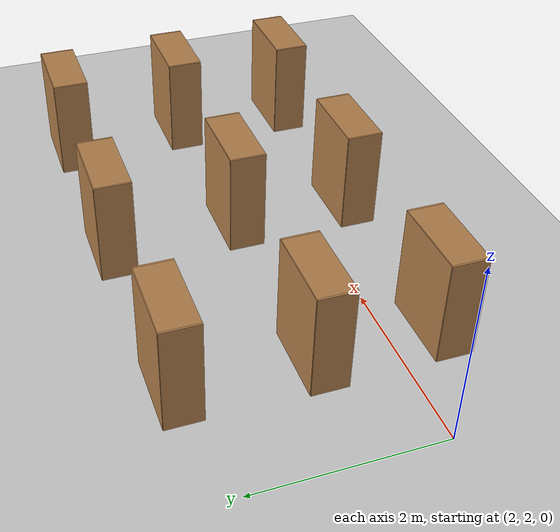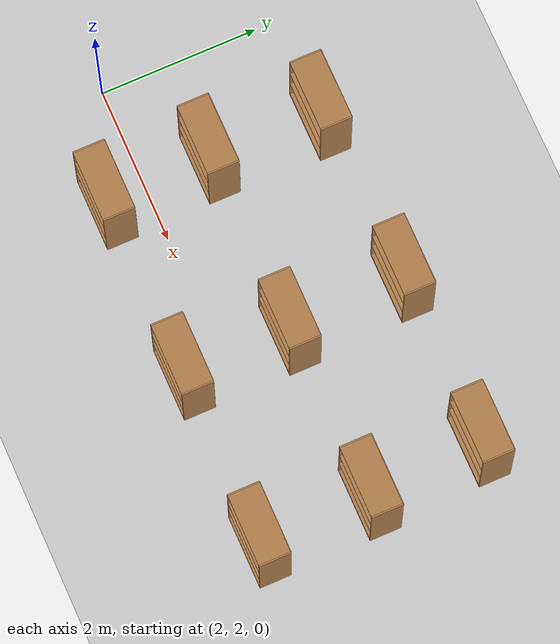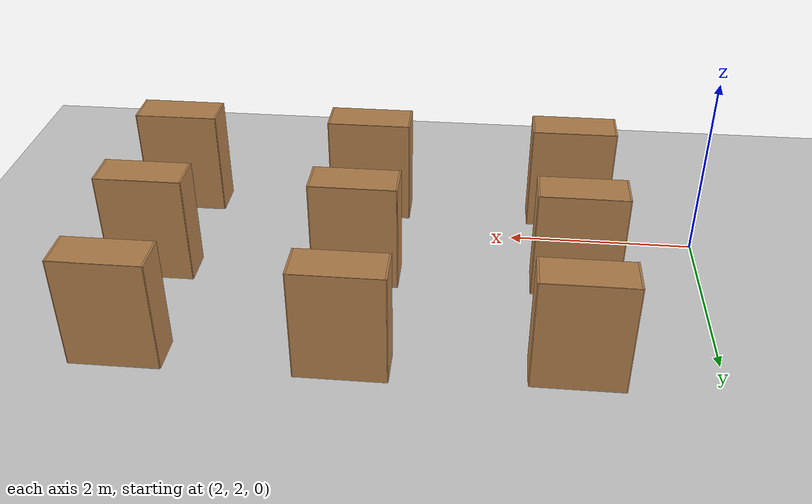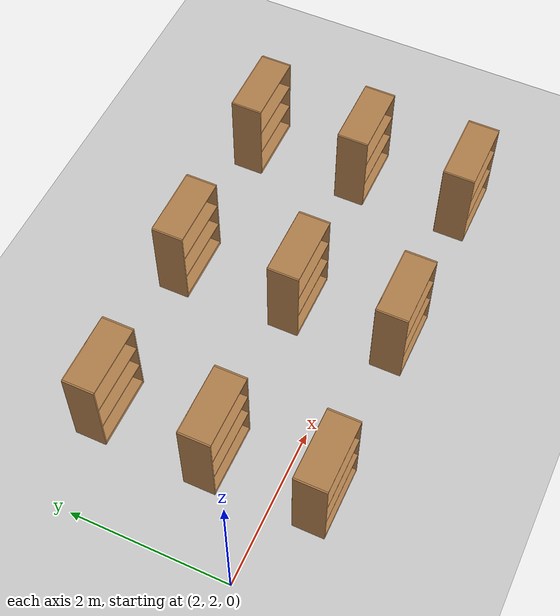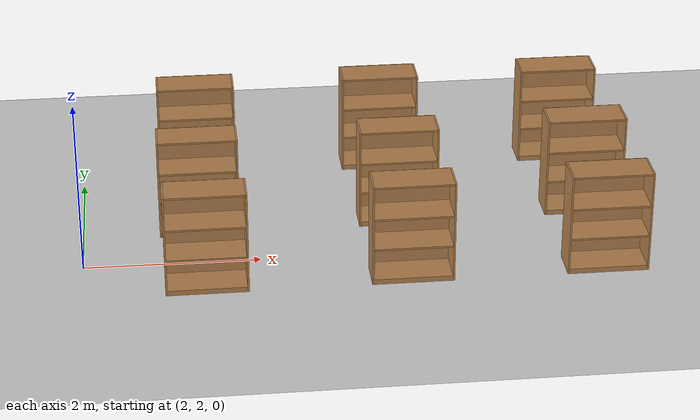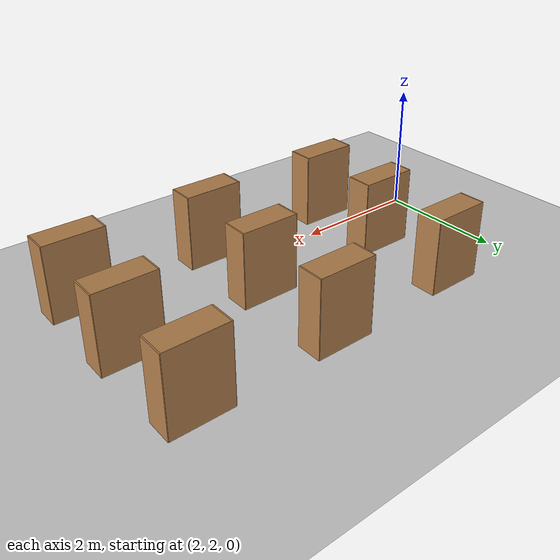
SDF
<sdf version="1.6">
 <world name="default">
  <model name="ground_plane">
   <static>1</static>
   <link name="link">
    <collision name="collision">
     <geometry><plane><normal>0 0 1</normal><size>100 100</size></plane></geometry>
     <surface><friction><ode><mu>100</mu><mu2>50</mu2></ode></friction></surface>
    </collision>
    <visual name="visual">
     <cast_shadows>0</cast_shadows>
     <geometry><plane><normal>0 0 1</normal><size>100 100</size></plane></geometry>
     <material>
      <script><uri>file://media/materials/scripts/gazebo.material</uri><name>Gazebo/Grey</name></script>
     </material>
    </visual>
   </link>
  </model>
  <model name="bookshelf_4">
   <static>1</static>
   <link name="link">
    <inertial><mass>1</mass></inertial>
    <collision name="back">
     <pose>0 0.005 0.6 0 -0 0</pose>
     <geometry><box><size>0.9 0.01 1.2</size></box></geometry>
    </collision>
    <visual name="visual1">
     <pose>0 0.005 0.6 0 -0 0</pose>
     <geometry><box><size>0.9 0.01 1.2</size></box></geometry>
     <material>
      <script><uri>file://media/materials/scripts/gazebo.material</uri><name>Gazebo/Wood</name></script>
     </material>
    </visual>
    <collision name="left_side">
     <pose>0.45 -0.195 0.6 0 -0 0</pose>
     <geometry><box><size>0.02 0.4 1.2</size></box></geometry>
    </collision>
    <visual name="visual2">
     <pose>0.45 -0.195 0.6 0 -0 0</pose>
     <geometry><box><size>0.02 0.4 1.2</size></box></geometry>
     <material>
      <script><uri>file://media/materials/scripts/gazebo.material</uri><name>Gazebo/Wood</name></script>
     </material>
    </visual>
    <collision name="right_side">
     <pose>-0.45 -0.195 0.6 0 -0 0</pose>
     <geometry><box><size>0.02 0.4 1.2</size></box></geometry>
    </collision>
    <visual name="visual3">
     <pose>-0.45 -0.195 0.6 0 -0 0</pose>
     <geometry><box><size>0.02 0.4 1.2</size></box></geometry>
     <material>
      <script><uri>file://media/materials/scripts/gazebo.material</uri><name>Gazebo/Wood</name></script>
     </material>
    </visual>
    <collision name="bottom">
     <pose>0 -0.195 0.03 0 -0 0</pose>
     <geometry><box><size>0.88 0.4 0.06</size></box></geometry>
    </collision>
    <visual name="visual4">
     <pose>0 -0.195 0.03 0 -0 0</pose>
     <geometry><box><size>0.88 0.4 0.06</size></box></geometry>
     <material>
      <script><uri>file://media/materials/scripts/gazebo.material</uri><name>Gazebo/Wood</name></script>
     </material>
    </visual>
    <collision name="top">
     <pose>0 -0.195 1.19 0 -0 0</pose>
     <geometry><box><size>0.88 0.4 0.02</size></box></geometry>
    </collision>
    <visual name="visual5">
     <pose>0 -0.195 1.19 0 -0 0</pose>
     <geometry><box><size>0.88 0.4 0.02</size></box></geometry>
     <material>
      <script><uri>file://media/materials/scripts/gazebo.material</uri><name>Gazebo/Wood</name></script>
     </material>
    </visual>
    <collision name="low_shelf">
     <pose>0 -0.195 0.43 0 -0 0</pose>
     <geometry><box><size>0.88 0.4 0.02</size></box></geometry>
    </collision>
    <visual name="visual6">
     <pose>0 -0.195 0.43 0 -0 0</pose>
     <geometry><box><size>0.88 0.4 0.02</size></box></geometry>
     <material>
      <script><uri>file://media/materials/scripts/gazebo.material</uri><name>Gazebo/Wood</name></script>
     </material>
    </visual>
    <collision name="high_shelf">
     <pose>0 -0.195 0.8 0 -0 0</pose>
     <geometry><box><size>0.88 0.4 0.02</size></box></geometry>
    </collision>
    <visual name="visual7">
     <pose>0 -0.195 0.8 0 -0 0</pose>
     <geometry><box><size>0.88 0.4 0.02</size></box></geometry>
     <material>
      <script><uri>file://media/materials/scripts/gazebo.material</uri><name>Gazebo/Wood</name></script>
     </material>
    </visual>
   </link>
   <pose>3.36998 4.44569 0 0 -0 0</pose>
  </model>
  <model name="bookshelf_8">
   <static>1</static>
   <link name="link">
    <inertial><mass>1</mass></inertial>
    <collision name="back">
     <pose>0 0.005 0.6 0 -0 0</pose>
     <geometry><box><size>0.9 0.01 1.2</size></box></geometry>
    </collision>
    <visual name="visual1">
     <pose>0 0.005 0.6 0 -0 0</pose>
     <geometry><box><size>0.9 0.01 1.2</size></box></geometry>
     <material>
      <script><uri>file://media/materials/scripts/gazebo.material</uri><name>Gazebo/Wood</name></script>
     </material>
    </visual>
    <collision name="left_side">
     <pose>0.45 -0.195 0.6 0 -0 0</pose>
     <geometry><box><size>0.02 0.4 1.2</size></box></geometry>
    </collision>
    <visual name="visual2">
     <pose>0.45 -0.195 0.6 0 -0 0</pose>
     <geometry><box><size>0.02 0.4 1.2</size></box></geometry>
     <material>
      <script><uri>file://media/materials/scripts/gazebo.material</uri><name>Gazebo/Wood</name></script>
     </material>
    </visual>
    <collision name="right_side">
     <pose>-0.45 -0.195 0.6 0 -0 0</pose>
     <geometry><box><size>0.02 0.4 1.2</size></box></geometry>
    </collision>
    <visual name="visual3">
     <pose>-0.45 -0.195 0.6 0 -0 0</pose>
     <geometry><box><size>0.02 0.4 1.2</size></box></geometry>
     <material>
      <script><uri>file://media/materials/scripts/gazebo.material</uri><name>Gazebo/Wood</name></script>
     </material>
    </visual>
    <collision name="bottom">
     <pose>0 -0.195 0.03 0 -0 0</pose>
     <geometry><box><size>0.88 0.4 0.06</size></box></geometry>
    </collision>
    <visual name="visual4">
     <pose>0 -0.195 0.03 0 -0 0</pose>
     <geometry><box><size>0.88 0.4 0.06</size></box></geometry>
     <material>
      <script><uri>file://media/materials/scripts/gazebo.material</uri><name>Gazebo/Wood</name></script>
     </material>
    </visual>
    <collision name="top">
     <pose>0 -0.195 1.19 0 -0 0</pose>
     <geometry><box><size>0.88 0.4 0.02</size></box></geometry>
    </collision>
    <visual name="visual5">
     <pose>0 -0.195 1.19 0 -0 0</pose>
     <geometry><box><size>0.88 0.4 0.02</size></box></geometry>
     <material>
      <script><uri>file://media/materials/scripts/gazebo.material</uri><name>Gazebo/Wood</name></script>
     </material>
    </visual>
    <collision name="low_shelf">
     <pose>0 -0.195 0.43 0 -0 0</pose>
     <geometry><box><size>0.88 0.4 0.02</size></box></geometry>
    </collision>
    <visual name="visual6">
     <pose>0 -0.195 0.43 0 -0 0</pose>
     <geometry><box><size>0.88 0.4 0.02</size></box></geometry>
     <material>
      <script><uri>file://media/materials/scripts/gazebo.material</uri><name>Gazebo/Wood</name></script>
     </material>
    </visual>
    <collision name="high_shelf">
     <pose>0 -0.195 0.8 0 -0 0</pose>
     <geometry><box><size>0.88 0.4 0.02</size></box></geometry>
    </collision>
    <visual name="visual7">
     <pose>0 -0.195 0.8 0 -0 0</pose>
     <geometry><box><size>0.88 0.4 0.02</size></box></geometry>
     <material>
      <script><uri>file://media/materials/scripts/gazebo.material</uri><name>Gazebo/Wood</name></script>
     </material>
    </visual>
   </link>
   <pose>5.5895 4.5203 0 0 -0 0</pose>
  </model>
  <model name="bookshelf_9">
   <static>1</static>
   <link name="link">
    <inertial><mass>1</mass></inertial>
    <collision name="back">
     <pose>0 0.005 0.6 0 -0 0</pose>
     <geometry><box><size>0.9 0.01 1.2</size></box></geometry>
    </collision>
    <visual name="visual1">
     <pose>0 0.005 0.6 0 -0 0</pose>
     <geometry><box><size>0.9 0.01 1.2</size></box></geometry>
     <material>
      <script><uri>file://media/materials/scripts/gazebo.material</uri><name>Gazebo/Wood</name></script>
     </material>
    </visual>
    <collision name="left_side">
     <pose>0.45 -0.195 0.6 0 -0 0</pose>
     <geometry><box><size>0.02 0.4 1.2</size></box></geometry>
    </collision>
    <visual name="visual2">
     <pose>0.45 -0.195 0.6 0 -0 0</pose>
     <geometry><box><size>0.02 0.4 1.2</size></box></geometry>
     <material>
      <script><uri>file://media/materials/scripts/gazebo.material</uri><name>Gazebo/Wood</name></script>
     </material>
    </visual>
    <collision name="right_side">
     <pose>-0.45 -0.195 0.6 0 -0 0</pose>
     <geometry><box><size>0.02 0.4 1.2</size></box></geometry>
    </collision>
    <visual name="visual3">
     <pose>-0.45 -0.195 0.6 0 -0 0</pose>
     <geometry><box><size>0.02 0.4 1.2</size></box></geometry>
     <material>
      <script><uri>file://media/materials/scripts/gazebo.material</uri><name>Gazebo/Wood</name></script>
     </material>
    </visual>
    <collision name="bottom">
     <pose>0 -0.195 0.03 0 -0 0</pose>
     <geometry><box><size>0.88 0.4 0.06</size></box></geometry>
    </collision>
    <visual name="visual4">
     <pose>0 -0.195 0.03 0 -0 0</pose>
     <geometry><box><size>0.88 0.4 0.06</size></box></geometry>
     <material>
      <script><uri>file://media/materials/scripts/gazebo.material</uri><name>Gazebo/Wood</name></script>
     </material>
    </visual>
    <collision name="top">
     <pose>0 -0.195 1.19 0 -0 0</pose>
     <geometry><box><size>0.88 0.4 0.02</size></box></geometry>
    </collision>
    <visual name="visual5">
     <pose>0 -0.195 1.19 0 -0 0</pose>
     <geometry><box><size>0.88 0.4 0.02</size></box></geometry>
     <material>
      <script><uri>file://media/materials/scripts/gazebo.material</uri><name>Gazebo/Wood</name></script>
     </material>
    </visual>
    <collision name="low_shelf">
     <pose>0 -0.195 0.43 0 -0 0</pose>
     <geometry><box><size>0.88 0.4 0.02</size></box></geometry>
    </collision>
    <visual name="visual6">
     <pose>0 -0.195 0.43 0 -0 0</pose>
     <geometry><box><size>0.88 0.4 0.02</size></box></geometry>
     <material>
      <script><uri>file://media/materials/scripts/gazebo.material</uri><name>Gazebo/Wood</name></script>
     </material>
    </visual>
    <collision name="high_shelf">
     <pose>0 -0.195 0.8 0 -0 0</pose>
     <geometry><box><size>0.88 0.4 0.02</size></box></geometry>
    </collision>
    <visual name="visual7">
     <pose>0 -0.195 0.8 0 -0 0</pose>
     <geometry><box><size>0.88 0.4 0.02</size></box></geometry>
     <material>
      <script><uri>file://media/materials/scripts/gazebo.material</uri><name>Gazebo/Wood</name></script>
     </material>
    </visual>
   </link>
   <pose>7.76656 4.53243 0 0 -0 0</pose>
  </model>
  <model name="bookshelf">
   <static>1</static>
   <link name="link">
    <inertial><mass>1</mass></inertial>
    <collision name="back">
     <pose>0 0.005 0.6 0 -0 0</pose>
     <geometry><box><size>0.9 0.01 1.2</size></box></geometry>
    </collision>
    <visual name="visual1">
     <pose>0 0.005 0.6 0 -0 0</pose>
     <geometry><box><size>0.9 0.01 1.2</size></box></geometry>
     <material>
      <script><uri>file://media/materials/scripts/gazebo.material</uri><name>Gazebo/Wood</name></script>
     </material>
    </visual>
    <collision name="left_side">
     <pose>0.45 -0.195 0.6 0 -0 0</pose>
     <geometry><box><size>0.02 0.4 1.2</size></box></geometry>
    </collision>
    <visual name="visual2">
     <pose>0.45 -0.195 0.6 0 -0 0</pose>
     <geometry><box><size>0.02 0.4 1.2</size></box></geometry>
     <material>
      <script><uri>file://media/materials/scripts/gazebo.material</uri><name>Gazebo/Wood</name></script>
     </material>
    </visual>
    <collision name="right_side">
     <pose>-0.45 -0.195 0.6 0 -0 0</pose>
     <geometry><box><size>0.02 0.4 1.2</size></box></geometry>
    </collision>
    <visual name="visual3">
     <pose>-0.45 -0.195 0.6 0 -0 0</pose>
     <geometry><box><size>0.02 0.4 1.2</size></box></geometry>
     <material>
      <script><uri>file://media/materials/scripts/gazebo.material</uri><name>Gazebo/Wood</name></script>
     </material>
    </visual>
    <collision name="bottom">
     <pose>0 -0.195 0.03 0 -0 0</pose>
     <geometry><box><size>0.88 0.4 0.06</size></box></geometry>
    </collision>
    <visual name="visual4">
     <pose>0 -0.195 0.03 0 -0 0</pose>
     <geometry><box><size>0.88 0.4 0.06</size></box></geometry>
     <material>
      <script><uri>file://media/materials/scripts/gazebo.material</uri><name>Gazebo/Wood</name></script>
     </material>
    </visual>
    <collision name="top">
     <pose>0 -0.195 1.19 0 -0 0</pose>
     <geometry><box><size>0.88 0.4 0.02</size></box></geometry>
    </collision>
    <visual name="visual5">
     <pose>0 -0.195 1.19 0 -0 0</pose>
     <geometry><box><size>0.88 0.4 0.02</size></box></geometry>
     <material>
      <script><uri>file://media/materials/scripts/gazebo.material</uri><name>Gazebo/Wood</name></script>
     </material>
    </visual>
    <collision name="low_shelf">
     <pose>0 -0.195 0.43 0 -0 0</pose>
     <geometry><box><size>0.88 0.4 0.02</size></box></geometry>
    </collision>
    <visual name="visual6">
     <pose>0 -0.195 0.43 0 -0 0</pose>
     <geometry><box><size>0.88 0.4 0.02</size></box></geometry>
     <material>
      <script><uri>file://media/materials/scripts/gazebo.material</uri><name>Gazebo/Wood</name></script>
     </material>
    </visual>
    <collision name="high_shelf">
     <pose>0 -0.195 0.8 0 -0 0</pose>
     <geometry><box><size>0.88 0.4 0.02</size></box></geometry>
    </collision>
    <visual name="visual7">
     <pose>0 -0.195 0.8 0 -0 0</pose>
     <geometry><box><size>0.88 0.4 0.02</size></box></geometry>
     <material>
      <script><uri>file://media/materials/scripts/gazebo.material</uri><name>Gazebo/Wood</name></script>
     </material>
    </visual>
   </link>
   <pose>3.36541 1.68749 0 0 -0 0</pose>
  </model>
  <model name="bookshelf_0">
   <static>1</static>
   <link name="link">
    <inertial><mass>1</mass></inertial>
    <collision name="back">
     <pose>0 0.005 0.6 0 -0 0</pose>
     <geometry><box><size>0.9 0.01 1.2</size></box></geometry>
    </collision>
    <visual name="visual1">
     <pose>0 0.005 0.6 0 -0 0</pose>
     <geometry><box><size>0.9 0.01 1.2</size></box></geometry>
     <material>
      <script><uri>file://media/materials/scripts/gazebo.material</uri><name>Gazebo/Wood</name></script>
     </material>
    </visual>
    <collision name="left_side">
     <pose>0.45 -0.195 0.6 0 -0 0</pose>
     <geometry><box><size>0.02 0.4 1.2</size></box></geometry>
    </collision>
    <visual name="visual2">
     <pose>0.45 -0.195 0.6 0 -0 0</pose>
     <geometry><box><size>0.02 0.4 1.2</size></box></geometry>
     <material>
      <script><uri>file://media/materials/scripts/gazebo.material</uri><name>Gazebo/Wood</name></script>
     </material>
    </visual>
    <collision name="right_side">
     <pose>-0.45 -0.195 0.6 0 -0 0</pose>
     <geometry><box><size>0.02 0.4 1.2</size></box></geometry>
    </collision>
    <visual name="visual3">
     <pose>-0.45 -0.195 0.6 0 -0 0</pose>
     <geometry><box><size>0.02 0.4 1.2</size></box></geometry>
     <material>
      <script><uri>file://media/materials/scripts/gazebo.material</uri><name>Gazebo/Wood</name></script>
     </material>
    </visual>
    <collision name="bottom">
     <pose>0 -0.195 0.03 0 -0 0</pose>
     <geometry><box><size>0.88 0.4 0.06</size></box></geometry>
    </collision>
    <visual name="visual4">
     <pose>0 -0.195 0.03 0 -0 0</pose>
     <geometry><box><size>0.88 0.4 0.06</size></box></geometry>
     <material>
      <script><uri>file://media/materials/scripts/gazebo.material</uri><name>Gazebo/Wood</name></script>
     </material>
    </visual>
    <collision name="top">
     <pose>0 -0.195 1.19 0 -0 0</pose>
     <geometry><box><size>0.88 0.4 0.02</size></box></geometry>
    </collision>
    <visual name="visual5">
     <pose>0 -0.195 1.19 0 -0 0</pose>
     <geometry><box><size>0.88 0.4 0.02</size></box></geometry>
     <material>
      <script><uri>file://media/materials/scripts/gazebo.material</uri><name>Gazebo/Wood</name></script>
     </material>
    </visual>
    <collision name="low_shelf">
     <pose>0 -0.195 0.43 0 -0 0</pose>
     <geometry><box><size>0.88 0.4 0.02</size></box></geometry>
    </collision>
    <visual name="visual6">
     <pose>0 -0.195 0.43 0 -0 0</pose>
     <geometry><box><size>0.88 0.4 0.02</size></box></geometry>
     <material>
      <script><uri>file://media/materials/scripts/gazebo.material</uri><name>Gazebo/Wood</name></script>
     </material>
    </visual>
    <collision name="high_shelf">
     <pose>0 -0.195 0.8 0 -0 0</pose>
     <geometry><box><size>0.88 0.4 0.02</size></box></geometry>
    </collision>
    <visual name="visual7">
     <pose>0 -0.195 0.8 0 -0 0</pose>
     <geometry><box><size>0.88 0.4 0.02</size></box></geometry>
     <material>
      <script><uri>file://media/materials/scripts/gazebo.material</uri><name>Gazebo/Wood</name></script>
     </material>
    </visual>
   </link>
   <pose>5.64464 1.69748 0 0 -0 0</pose>
  </model>
  <model name="bookshelf_10">
   <static>1</static>
   <link name="link">
    <inertial><mass>1</mass></inertial>
    <collision name="back">
     <pose>0 0.005 0.6 0 -0 0</pose>
     <geometry><box><size>0.9 0.01 1.2</size></box></geometry>
    </collision>
    <visual name="visual1">
     <pose>0 0.005 0.6 0 -0 0</pose>
     <geometry><box><size>0.9 0.01 1.2</size></box></geometry>
     <material>
      <script><uri>file://media/materials/scripts/gazebo.material</uri><name>Gazebo/Wood</name></script>
     </material>
    </visual>
    <collision name="left_side">
     <pose>0.45 -0.195 0.6 0 -0 0</pose>
     <geometry><box><size>0.02 0.4 1.2</size></box></geometry>
    </collision>
    <visual name="visual2">
     <pose>0.45 -0.195 0.6 0 -0 0</pose>
     <geometry><box><size>0.02 0.4 1.2</size></box></geometry>
     <material>
      <script><uri>file://media/materials/scripts/gazebo.material</uri><name>Gazebo/Wood</name></script>
     </material>
    </visual>
    <collision name="right_side">
     <pose>-0.45 -0.195 0.6 0 -0 0</pose>
     <geometry><box><size>0.02 0.4 1.2</size></box></geometry>
    </collision>
    <visual name="visual3">
     <pose>-0.45 -0.195 0.6 0 -0 0</pose>
     <geometry><box><size>0.02 0.4 1.2</size></box></geometry>
     <material>
      <script><uri>file://media/materials/scripts/gazebo.material</uri><name>Gazebo/Wood</name></script>
     </material>
    </visual>
    <collision name="bottom">
     <pose>0 -0.195 0.03 0 -0 0</pose>
     <geometry><box><size>0.88 0.4 0.06</size></box></geometry>
    </collision>
    <visual name="visual4">
     <pose>0 -0.195 0.03 0 -0 0</pose>
     <geometry><box><size>0.88 0.4 0.06</size></box></geometry>
     <material>
      <script><uri>file://media/materials/scripts/gazebo.material</uri><name>Gazebo/Wood</name></script>
     </material>
    </visual>
    <collision name="top">
     <pose>0 -0.195 1.19 0 -0 0</pose>
     <geometry><box><size>0.88 0.4 0.02</size></box></geometry>
    </collision>
    <visual name="visual5">
     <pose>0 -0.195 1.19 0 -0 0</pose>
     <geometry><box><size>0.88 0.4 0.02</size></box></geometry>
     <material>
      <script><uri>file://media/materials/scripts/gazebo.material</uri><name>Gazebo/Wood</name></script>
     </material>
    </visual>
    <collision name="low_shelf">
     <pose>0 -0.195 0.43 0 -0 0</pose>
     <geometry><box><size>0.88 0.4 0.02</size></box></geometry>
    </collision>
    <visual name="visual6">
     <pose>0 -0.195 0.43 0 -0 0</pose>
     <geometry><box><size>0.88 0.4 0.02</size></box></geometry>
     <material>
      <script><uri>file://media/materials/scripts/gazebo.material</uri><name>Gazebo/Wood</name></script>
     </material>
    </visual>
    <collision name="high_shelf">
     <pose>0 -0.195 0.8 0 -0 0</pose>
     <geometry><box><size>0.88 0.4 0.02</size></box></geometry>
    </collision>
    <visual name="visual7">
     <pose>0 -0.195 0.8 0 -0 0</pose>
     <geometry><box><size>0.88 0.4 0.02</size></box></geometry>
     <material>
      <script><uri>file://media/materials/scripts/gazebo.material</uri><name>Gazebo/Wood</name></script>
     </material>
    </visual>
   </link>
   <pose>7.83971 1.70645 0 0 -0 0</pose>
  </model>
  <model name="bookshelf_11">
   <static>1</static>
   <link name="link">
    <inertial><mass>1</mass></inertial>
    <collision name="back">
     <pose>0 0.005 0.6 0 -0 0</pose>
     <geometry><box><size>0.9 0.01 1.2</size></box></geometry>
    </collision>
    <visual name="visual1">
     <pose>0 0.005 0.6 0 -0 0</pose>
     <geometry><box><size>0.9 0.01 1.2</size></box></geometry>
     <material>
      <script><uri>file://media/materials/scripts/gazebo.material</uri><name>Gazebo/Wood</name></script>
     </material>
    </visual>
    <collision name="left_side">
     <pose>0.45 -0.195 0.6 0 -0 0</pose>
     <geometry><box><size>0.02 0.4 1.2</size></box></geometry>
    </collision>
    <visual name="visual2">
     <pose>0.45 -0.195 0.6 0 -0 0</pose>
     <geometry><box><size>0.02 0.4 1.2</size></box></geometry>
     <material>
      <script><uri>file://media/materials/scripts/gazebo.material</uri><name>Gazebo/Wood</name></script>
     </material>
    </visual>
    <collision name="right_side">
     <pose>-0.45 -0.195 0.6 0 -0 0</pose>
     <geometry><box><size>0.02 0.4 1.2</size></box></geometry>
    </collision>
    <visual name="visual3">
     <pose>-0.45 -0.195 0.6 0 -0 0</pose>
     <geometry><box><size>0.02 0.4 1.2</size></box></geometry>
     <material>
      <script><uri>file://media/materials/scripts/gazebo.material</uri><name>Gazebo/Wood</name></script>
     </material>
    </visual>
    <collision name="bottom">
     <pose>0 -0.195 0.03 0 -0 0</pose>
     <geometry><box><size>0.88 0.4 0.06</size></box></geometry>
    </collision>
    <visual name="visual4">
     <pose>0 -0.195 0.03 0 -0 0</pose>
     <geometry><box><size>0.88 0.4 0.06</size></box></geometry>
     <material>
      <script><uri>file://media/materials/scripts/gazebo.material</uri><name>Gazebo/Wood</name></script>
     </material>
    </visual>
    <collision name="top">
     <pose>0 -0.195 1.19 0 -0 0</pose>
     <geometry><box><size>0.88 0.4 0.02</size></box></geometry>
    </collision>
    <visual name="visual5">
     <pose>0 -0.195 1.19 0 -0 0</pose>
     <geometry><box><size>0.88 0.4 0.02</size></box></geometry>
     <material>
      <script><uri>file://media/materials/scripts/gazebo.material</uri><name>Gazebo/Wood</name></script>
     </material>
    </visual>
    <collision name="low_shelf">
     <pose>0 -0.195 0.43 0 -0 0</pose>
     <geometry><box><size>0.88 0.4 0.02</size></box></geometry>
    </collision>
    <visual name="visual6">
     <pose>0 -0.195 0.43 0 -0 0</pose>
     <geometry><box><size>0.88 0.4 0.02</size></box></geometry>
     <material>
      <script><uri>file://media/materials/scripts/gazebo.material</uri><name>Gazebo/Wood</name></script>
     </material>
    </visual>
    <collision name="high_shelf">
     <pose>0 -0.195 0.8 0 -0 0</pose>
     <geometry><box><size>0.88 0.4 0.02</size></box></geometry>
    </collision>
    <visual name="visual7">
     <pose>0 -0.195 0.8 0 -0 0</pose>
     <geometry><box><size>0.88 0.4 0.02</size></box></geometry>
     <material>
      <script><uri>file://media/materials/scripts/gazebo.material</uri><name>Gazebo/Wood</name></script>
     </material>
    </visual>
   </link>
   <pose>3.33501 3.02207 0 0 -0 0</pose>
  </model>
  <model name="bookshelf_12">
   <static>1</static>
   <link name="link">
    <inertial><mass>1</mass></inertial>
    <collision name="back">
     <pose>0 0.005 0.6 0 -0 0</pose>
     <geometry><box><size>0.9 0.01 1.2</size></box></geometry>
    </collision>
    <visual name="visual1">
     <pose>0 0.005 0.6 0 -0 0</pose>
     <geometry><box><size>0.9 0.01 1.2</size></box></geometry>
     <material>
      <script><uri>file://media/materials/scripts/gazebo.material</uri><name>Gazebo/Wood</name></script>
     </material>
    </visual>
    <collision name="left_side">
     <pose>0.45 -0.195 0.6 0 -0 0</pose>
     <geometry><box><size>0.02 0.4 1.2</size></box></geometry>
    </collision>
    <visual name="visual2">
     <pose>0.45 -0.195 0.6 0 -0 0</pose>
     <geometry><box><size>0.02 0.4 1.2</size></box></geometry>
     <material>
      <script><uri>file://media/materials/scripts/gazebo.material</uri><name>Gazebo/Wood</name></script>
     </material>
    </visual>
    <collision name="right_side">
     <pose>-0.45 -0.195 0.6 0 -0 0</pose>
     <geometry><box><size>0.02 0.4 1.2</size></box></geometry>
    </collision>
    <visual name="visual3">
     <pose>-0.45 -0.195 0.6 0 -0 0</pose>
     <geometry><box><size>0.02 0.4 1.2</size></box></geometry>
     <material>
      <script><uri>file://media/materials/scripts/gazebo.material</uri><name>Gazebo/Wood</name></script>
     </material>
    </visual>
    <collision name="bottom">
     <pose>0 -0.195 0.03 0 -0 0</pose>
     <geometry><box><size>0.88 0.4 0.06</size></box></geometry>
    </collision>
    <visual name="visual4">
     <pose>0 -0.195 0.03 0 -0 0</pose>
     <geometry><box><size>0.88 0.4 0.06</size></box></geometry>
     <material>
      <script><uri>file://media/materials/scripts/gazebo.material</uri><name>Gazebo/Wood</name></script>
     </material>
    </visual>
    <collision name="top">
     <pose>0 -0.195 1.19 0 -0 0</pose>
     <geometry><box><size>0.88 0.4 0.02</size></box></geometry>
    </collision>
    <visual name="visual5">
     <pose>0 -0.195 1.19 0 -0 0</pose>
     <geometry><box><size>0.88 0.4 0.02</size></box></geometry>
     <material>
      <script><uri>file://media/materials/scripts/gazebo.material</uri><name>Gazebo/Wood</name></script>
     </material>
    </visual>
    <collision name="low_shelf">
     <pose>0 -0.195 0.43 0 -0 0</pose>
     <geometry><box><size>0.88 0.4 0.02</size></box></geometry>
    </collision>
    <visual name="visual6">
     <pose>0 -0.195 0.43 0 -0 0</pose>
     <geometry><box><size>0.88 0.4 0.02</size></box></geometry>
     <material>
      <script><uri>file://media/materials/scripts/gazebo.material</uri><name>Gazebo/Wood</name></script>
     </material>
    </visual>
    <collision name="high_shelf">
     <pose>0 -0.195 0.8 0 -0 0</pose>
     <geometry><box><size>0.88 0.4 0.02</size></box></geometry>
    </collision>
    <visual name="visual7">
     <pose>0 -0.195 0.8 0 -0 0</pose>
     <geometry><box><size>0.88 0.4 0.02</size></box></geometry>
     <material>
      <script><uri>file://media/materials/scripts/gazebo.material</uri><name>Gazebo/Wood</name></script>
     </material>
    </visual>
   </link>
   <pose>5.64553 3.0478 0 0 -0 0</pose>
  </model>
  <model name="bookshelf_13">
   <static>1</static>
   <link name="link">
    <inertial><mass>1</mass></inertial>
    <collision name="back">
     <pose>0 0.005 0.6 0 -0 0</pose>
     <geometry><box><size>0.9 0.01 1.2</size></box></geometry>
    </collision>
    <visual name="visual1">
     <pose>0 0.005 0.6 0 -0 0</pose>
     <geometry><box><size>0.9 0.01 1.2</size></box></geometry>
     <material>
      <script><uri>file://media/materials/scripts/gazebo.material</uri><name>Gazebo/Wood</name></script>
     </material>
    </visual>
    <collision name="left_side">
     <pose>0.45 -0.195 0.6 0 -0 0</pose>
     <geometry><box><size>0.02 0.4 1.2</size></box></geometry>
    </collision>
    <visual name="visual2">
     <pose>0.45 -0.195 0.6 0 -0 0</pose>
     <geometry><box><size>0.02 0.4 1.2</size></box></geometry>
     <material>
      <script><uri>file://media/materials/scripts/gazebo.material</uri><name>Gazebo/Wood</name></script>
     </material>
    </visual>
    <collision name="right_side">
     <pose>-0.45 -0.195 0.6 0 -0 0</pose>
     <geometry><box><size>0.02 0.4 1.2</size></box></geometry>
    </collision>
    <visual name="visual3">
     <pose>-0.45 -0.195 0.6 0 -0 0</pose>
     <geometry><box><size>0.02 0.4 1.2</size></box></geometry>
     <material>
      <script><uri>file://media/materials/scripts/gazebo.material</uri><name>Gazebo/Wood</name></script>
     </material>
    </visual>
    <collision name="bottom">
     <pose>0 -0.195 0.03 0 -0 0</pose>
     <geometry><box><size>0.88 0.4 0.06</size></box></geometry>
    </collision>
    <visual name="visual4">
     <pose>0 -0.195 0.03 0 -0 0</pose>
     <geometry><box><size>0.88 0.4 0.06</size></box></geometry>
     <material>
      <script><uri>file://media/materials/scripts/gazebo.material</uri><name>Gazebo/Wood</name></script>
     </material>
    </visual>
    <collision name="top">
     <pose>0 -0.195 1.19 0 -0 0</pose>
     <geometry><box><size>0.88 0.4 0.02</size></box></geometry>
    </collision>
    <visual name="visual5">
     <pose>0 -0.195 1.19 0 -0 0</pose>
     <geometry><box><size>0.88 0.4 0.02</size></box></geometry>
     <material>
      <script><uri>file://media/materials/scripts/gazebo.material</uri><name>Gazebo/Wood</name></script>
     </material>
    </visual>
    <collision name="low_shelf">
     <pose>0 -0.195 0.43 0 -0 0</pose>
     <geometry><box><size>0.88 0.4 0.02</size></box></geometry>
    </collision>
    <visual name="visual6">
     <pose>0 -0.195 0.43 0 -0 0</pose>
     <geometry><box><size>0.88 0.4 0.02</size></box></geometry>
     <material>
      <script><uri>file://media/materials/scripts/gazebo.material</uri><name>Gazebo/Wood</name></script>
     </material>
    </visual>
    <collision name="high_shelf">
     <pose>0 -0.195 0.8 0 -0 0</pose>
     <geometry><box><size>0.88 0.4 0.02</size></box></geometry>
    </collision>
    <visual name="visual7">
     <pose>0 -0.195 0.8 0 -0 0</pose>
     <geometry><box><size>0.88 0.4 0.02</size></box></geometry>
     <material>
      <script><uri>file://media/materials/scripts/gazebo.material</uri><name>Gazebo/Wood</name></script>
     </material>
    </visual>
   </link>
   <pose>7.83922 3.10481 0 0 -0 0</pose>
  </model>
 </world>
</sdf>
